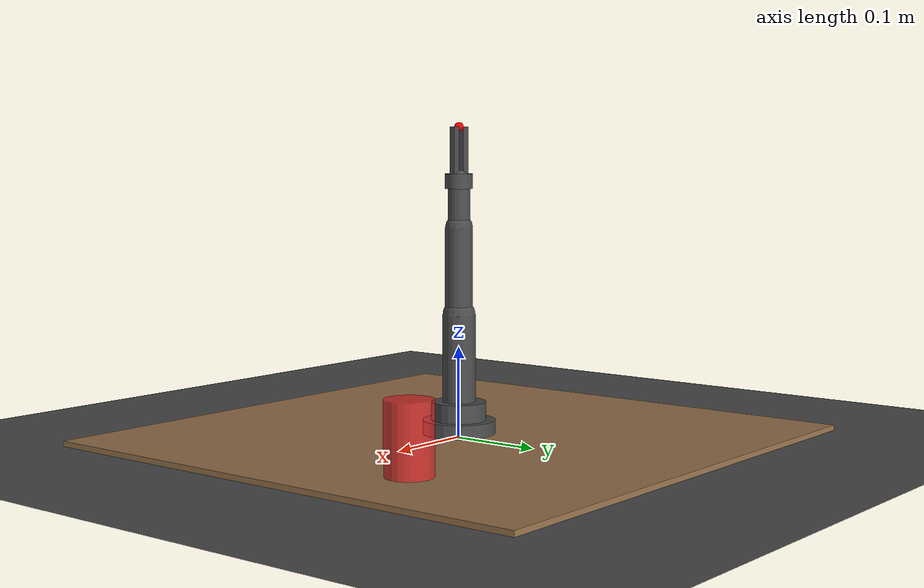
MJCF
<mujoco model="so_arm101">
  <compiler angle="radian" autolimits="true"/>

  <visual>
    <global offwidth="1280" offheight="720"/>
  </visual>

  <option gravity="0 0 -9.81" timestep="0.002"/>

  <default>
    <joint damping="0.5" armature="0.1"/>
    <geom type="capsule" rgba="0.3 0.3 0.3 1" friction="1 0.005 0.001"/>
    <position kp="50" kv="5"/>
  </default>

  <asset>
    <texture type="2d" name="grid" builtin="checker" rgb1="0.9 0.9 0.9" rgb2="0.7 0.7 0.7"
             width="512" height="512"/>
    <material name="grid_mat" texture="grid" texrepeat="8 8" reflectance="0.1"/>
    <material name="arm_dark" rgba="0.15 0.15 0.15 1"/>
    <material name="arm_blue" rgba="0.2 0.4 0.8 1"/>
    <material name="arm_orange" rgba="0.9 0.5 0.1 1"/>
    <material name="gripper_mat" rgba="0.4 0.4 0.4 1"/>
    <material name="target_mat" rgba="0.9 0.2 0.2 0.5"/>
  </asset>

  <worldbody>
    <!-- Ground plane -->
    <geom name="floor" type="plane" size="0.5 0.5 0.01" material="grid_mat"/>

    <!-- Table surface -->
    <body name="table" pos="0 0 0.0">
      <geom name="table_top" type="box" size="0.3 0.3 0.005" pos="0 0 0"
            rgba="0.6 0.45 0.3 1" mass="10"/>
    </body>

    <!-- Target object (a cup to reach for) -->
    <body name="target_cup" pos="0.20 0.10 0.04">
      <geom name="cup_body" type="cylinder" size="0.025 0.04" rgba="0.9 0.2 0.2 0.8" mass="0.1"/>
      <joint name="cup_free" type="free"/>
    </body>

    <!-- SO-ARM101 Robot -->
    <body name="base_mount" pos="0 0 0.005">
      <!-- Base plate -->
      <geom name="base_plate" type="cylinder" size="0.04 0.015" material="arm_dark" mass="0.2"/>

      <!-- Joint 1: Base rotation (yaw) -->
      <body name="base_link" pos="0 0 0.015">
        <joint name="base_rotation" type="hinge" axis="0 0 1"
               range="-3.14 3.14" ref="0"/>
        <geom name="base_body" type="cylinder" size="0.03 0.02" material="arm_blue" mass="0.15"/>

        <!-- Joint 2: Shoulder (pitch) -->
        <body name="shoulder_link" pos="0 0 0.02">
          <joint name="shoulder" type="hinge" axis="0 1 0"
                 range="-1.57 1.57" ref="0"/>
          <geom name="shoulder_body" type="capsule" fromto="0 0 0 0 0 0.095" size="0.018"
                material="arm_dark" mass="0.12"/>

          <!-- Joint 3: Elbow (pitch) -->
          <body name="elbow_link" pos="0 0 0.095">
            <joint name="elbow" type="hinge" axis="0 1 0"
                   range="-2.36 0.0" ref="0"/>
            <geom name="elbow_body" type="capsule" fromto="0 0 0 0 0 0.095" size="0.015"
                  material="arm_blue" mass="0.10"/>

            <!-- Joint 4: Wrist flex (pitch) -->
            <body name="wrist_flex_link" pos="0 0 0.095">
              <joint name="wrist_flex" type="hinge" axis="0 1 0"
                     range="-1.57 1.57" ref="0"/>
              <geom name="wrist_flex_body" type="capsule" fromto="0 0 0 0 0 0.05" size="0.012"
                    material="arm_dark" mass="0.06"/>

              <!-- Joint 5: Wrist roll (rotation around forearm axis) -->
              <body name="wrist_roll_link" pos="0 0 0.05">
                <joint name="wrist_roll" type="hinge" axis="0 0 1"
                       range="-3.14 3.14" ref="0"/>
                <geom name="wrist_roll_body" type="cylinder" size="0.015 0.008"
                      material="arm_orange" mass="0.04"/>

                <!-- Joint 6: Gripper -->
                <body name="gripper_base" pos="0 0 0.008">
                  <joint name="gripper" type="hinge" axis="0 1 0"
                         range="0.0 1.05" ref="0"/>
                  <!-- Left finger -->
                  <geom name="finger_left" type="box" size="0.004 0.003 0.025"
                        pos="0.008 0 0.025" material="gripper_mat" mass="0.02"/>
                  <!-- Right finger -->
                  <geom name="finger_right" type="box" size="0.004 0.003 0.025"
                        pos="-0.008 0 0.025" material="gripper_mat" mass="0.02"/>
                  <!-- Fingertip site for measuring end-effector position -->
                  <site name="end_effector" pos="0 0 0.05" size="0.005" rgba="1 0 0 1"/>
                </body>
              </body>
            </body>
          </body>
        </body>
      </body>
    </body>

    <!-- Camera -->
    <camera name="overview" pos="0.5 -0.3 0.5" xyaxes="0.5 0.87 0 -0.3 0.2 0.93"/>
    <camera name="front" pos="0.4 0 0.3" xyaxes="0 1 0 -0.6 0 0.8"/>
    <camera name="top" pos="0 0 0.8" xyaxes="1 0 0 0 1 0"/>

    <!-- Lighting -->
    <light pos="0.3 0.3 0.8" dir="-0.3 -0.3 -0.8" diffuse="0.8 0.8 0.8"/>
    <light pos="-0.3 -0.3 0.8" dir="0.3 0.3 -0.8" diffuse="0.4 0.4 0.4"/>
  </worldbody>

  <actuator>
    <!-- STS3215 servo actuators: position-controlled -->
    <!-- ctrlrange matches joint range, forcerange based on 30kg.cm ≈ 2.94 Nm -->
    <position name="act_base_rotation" joint="base_rotation" ctrlrange="-3.14 3.14"
              kp="50" forcerange="-3.0 3.0"/>
    <position name="act_shoulder" joint="shoulder" ctrlrange="-1.57 1.57"
              kp="80" forcerange="-3.0 3.0"/>
    <position name="act_elbow" joint="elbow" ctrlrange="-2.36 0.0"
              kp="60" forcerange="-3.0 3.0"/>
    <position name="act_wrist_flex" joint="wrist_flex" ctrlrange="-1.57 1.57"
              kp="40" forcerange="-2.0 2.0"/>
    <position name="act_wrist_roll" joint="wrist_roll" ctrlrange="-3.14 3.14"
              kp="30" forcerange="-2.0 2.0"/>
    <position name="act_gripper" joint="gripper" ctrlrange="0.0 1.05"
              kp="20" forcerange="-1.0 1.0"/>
  </actuator>

  <sensor>
    <jointpos name="pos_base_rotation" joint="base_rotation"/>
    <jointpos name="pos_shoulder" joint="shoulder"/>
    <jointpos name="pos_elbow" joint="elbow"/>
    <jointpos name="pos_wrist_flex" joint="wrist_flex"/>
    <jointpos name="pos_wrist_roll" joint="wrist_roll"/>
    <jointpos name="pos_gripper" joint="gripper"/>
    <jointvel name="vel_base_rotation" joint="base_rotation"/>
    <jointvel name="vel_shoulder" joint="shoulder"/>
    <jointvel name="vel_elbow" joint="elbow"/>
    <jointvel name="vel_wrist_flex" joint="wrist_flex"/>
    <jointvel name="vel_wrist_roll" joint="wrist_roll"/>
    <jointvel name="vel_gripper" joint="gripper"/>
    <framepos name="ee_pos" objtype="site" objname="end_effector"/>
  </sensor>
</mujoco>
